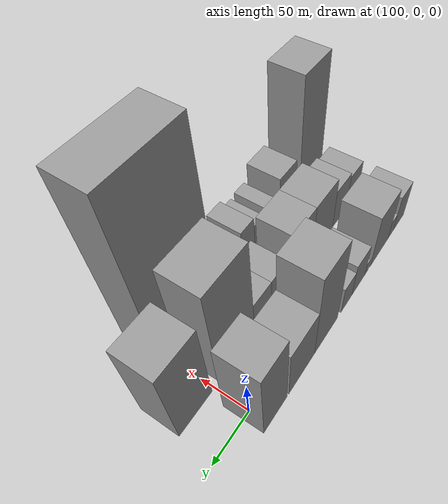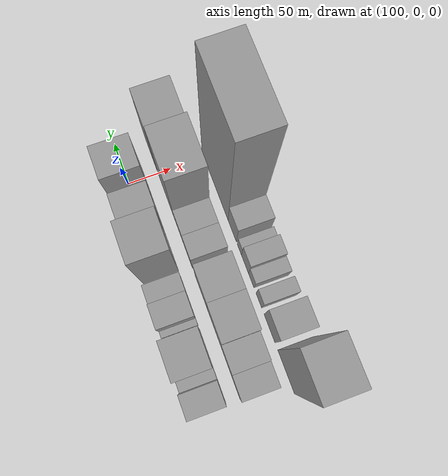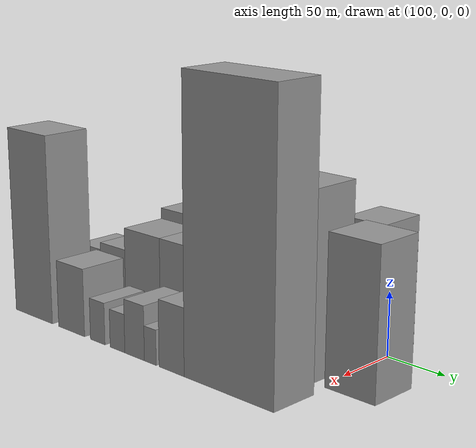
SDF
<sdf version="1.6">
 <world name="default">
  <model name="building_7">
   <static>1</static>
   <pose>100.0000 -246.0268 0 0.000000 0.000000 0.000000</pose>
   <link name="link">
    <pose>0 0 25.50 0 0 0</pose>
    <collision name="collision"><geometry><box><size>40.0000 25.8825 51.0000</size></box></geometry></collision>
    <visual name="visual">
     <cast_shadows>0</cast_shadows>
     <geometry><box><size>40.0000 25.8825 51.0000</size></box></geometry>
     <material>
      <script>
       <uri>model://grey_wall/materials/scripts</uri>
       <uri>model://grey_wall/materials/textures</uri>
       <name>vrc/grey_wall</name>
      </script>
     </material>
    </visual>
   </link>
  </model>
  <model name="building_8">
   <static>1</static>
   <pose>100.0000 -226.8082 0 0.000000 0.000000 0.000000</pose>
   <link name="link">
    <pose>0 0 13.50 0 0 0</pose>
    <collision name="collision"><geometry><box><size>40.0000 12.5546 27.0000</size></box></geometry></collision>
    <visual name="visual">
     <cast_shadows>0</cast_shadows>
     <geometry><box><size>40.0000 12.5546 27.0000</size></box></geometry>
     <material>
      <script>
       <uri>model://grey_wall/materials/scripts</uri>
       <uri>model://grey_wall/materials/textures</uri>
       <name>vrc/grey_wall</name>
      </script>
     </material>
    </visual>
   </link>
  </model>
  <model name="building_9">
   <static>1</static>
   <pose>100.0000 -200.1987 0 0.000000 0.000000 0.000000</pose>
   <link name="link">
    <pose>0 0 37.50 0 0 0</pose>
    <collision name="collision"><geometry><box><size>40.0000 40.6645 75.0000</size></box></geometry></collision>
    <visual name="visual">
     <cast_shadows>0</cast_shadows>
     <geometry><box><size>40.0000 40.6645 75.0000</size></box></geometry>
     <material>
      <script>
       <uri>model://grey_wall/materials/scripts</uri>
       <uri>model://grey_wall/materials/textures</uri>
       <name>vrc/grey_wall</name>
      </script>
     </material>
    </visual>
   </link>
  </model>
  <model name="building_10">
   <static>1</static>
   <pose>100.0000 -172.0679 0 0.000000 0.000000 0.000000</pose>
   <link name="link">
    <pose>0 0 9.00 0 0 0</pose>
    <collision name="collision"><geometry><box><size>40.0000 7.5971 18.0000</size></box></geometry></collision>
    <visual name="visual">
     <cast_shadows>0</cast_shadows>
     <geometry><box><size>40.0000 7.5971 18.0000</size></box></geometry>
     <material>
      <script>
       <uri>model://grey_wall/materials/scripts</uri>
       <uri>model://grey_wall/materials/textures</uri>
       <name>vrc/grey_wall</name>
      </script>
     </material>
    </visual>
   </link>
  </model>
  <model name="building_11">
   <static>1</static>
   <pose>100.0000 -154.8904 0 0.000000 0.000000 0.000000</pose>
   <link name="link">
    <pose>0 0 24.00 0 0 0</pose>
    <collision name="collision"><geometry><box><size>40.0000 26.7578 48.0000</size></box></geometry></collision>
    <visual name="visual">
     <cast_shadows>0</cast_shadows>
     <geometry><box><size>40.0000 26.7578 48.0000</size></box></geometry>
     <material>
      <script>
       <uri>model://grey_wall/materials/scripts</uri>
       <uri>model://grey_wall/materials/textures</uri>
       <name>vrc/grey_wall</name>
      </script>
     </material>
    </visual>
   </link>
  </model>
  <model name="building_12">
   <static>1</static>
   <pose>100.0000 -130.8595 0 0.000000 0.000000 0.000000</pose>
   <link name="link">
    <pose>0 0 19.50 0 0 0</pose>
    <collision name="collision"><geometry><box><size>40.0000 21.3041 39.0000</size></box></geometry></collision>
    <visual name="visual">
     <cast_shadows>0</cast_shadows>
     <geometry><box><size>40.0000 21.3041 39.0000</size></box></geometry>
     <material>
      <script>
       <uri>model://grey_wall/materials/scripts</uri>
       <uri>model://grey_wall/materials/textures</uri>
       <name>vrc/grey_wall</name>
      </script>
     </material>
    </visual>
   </link>
  </model>
  <model name="building_13">
   <static>1</static>
   <pose>100.0000 -92.4221 0 0.000000 0.000000 0.000000</pose>
   <link name="link">
    <pose>0 0 60.00 0 0 0</pose>
    <collision name="collision"><geometry><box><size>40.0000 41.5708 120.0000</size></box></geometry></collision>
    <visual name="visual">
     <cast_shadows>0</cast_shadows>
     <geometry><box><size>40.0000 41.5708 120.0000</size></box></geometry>
     <material>
      <script>
       <uri>model://grey_wall/materials/scripts</uri>
       <uri>model://grey_wall/materials/textures</uri>
       <name>vrc/grey_wall</name>
      </script>
     </material>
    </visual>
   </link>
  </model>
  <model name="building_14">
   <static>1</static>
   <pose>100.0000 -50.4554 0 0.000000 0.000000 0.000000</pose>
   <link name="link">
    <pose>0 0 36.00 0 0 0</pose>
    <collision name="collision"><geometry><box><size>40.0000 42.3625 72.0000</size></box></geometry></collision>
    <visual name="visual">
     <cast_shadows>0</cast_shadows>
     <geometry><box><size>40.0000 42.3625 72.0000</size></box></geometry>
     <material>
      <script>
       <uri>model://grey_wall/materials/scripts</uri>
       <uri>model://grey_wall/materials/textures</uri>
       <name>vrc/grey_wall</name>
      </script>
     </material>
    </visual>
   </link>
  </model>
  <model name="building_15">
   <static>1</static>
   <pose>100.0000 -8.9203 0 0.000000 0.000000 0.000000</pose>
   <link name="link">
    <pose>0 0 52.50 0 0 0</pose>
    <collision name="collision"><geometry><box><size>40.0000 34.7076 105.0000</size></box></geometry></collision>
    <visual name="visual">
     <cast_shadows>0</cast_shadows>
     <geometry><box><size>40.0000 34.7076 105.0000</size></box></geometry>
     <material>
      <script>
       <uri>model://grey_wall/materials/scripts</uri>
       <uri>model://grey_wall/materials/textures</uri>
       <name>vrc/grey_wall</name>
      </script>
     </material>
    </visual>
   </link>
  </model>
  <model name="building_41">
   <static>1</static>
   <pose>155.0000 -247.2422 0 0.000000 0.000000 0.000000</pose>
   <link name="link">
    <pose>0 0 24.00 0 0 0</pose>
    <collision name="collision"><geometry><box><size>40.0000 26.9508 48.0000</size></box></geometry></collision>
    <visual name="visual">
     <cast_shadows>0</cast_shadows>
     <geometry><box><size>40.0000 26.9508 48.0000</size></box></geometry>
     <material>
      <script>
       <uri>model://grey_wall/materials/scripts</uri>
       <uri>model://grey_wall/materials/textures</uri>
       <name>vrc/grey_wall</name>
      </script>
     </material>
    </visual>
   </link>
  </model>
  <model name="building_42">
   <static>1</static>
   <pose>155.0000 -218.7547 0 0.000000 0.000000 0.000000</pose>
   <link name="link">
    <pose>0 0 27.00 0 0 0</pose>
    <collision name="collision"><geometry><box><size>40.0000 30.0242 54.0000</size></box></geometry></collision>
    <visual name="visual">
     <cast_shadows>0</cast_shadows>
     <geometry><box><size>40.0000 30.0242 54.0000</size></box></geometry>
     <material>
      <script>
       <uri>model://grey_wall/materials/scripts</uri>
       <uri>model://grey_wall/materials/textures</uri>
       <name>vrc/grey_wall</name>
      </script>
     </material>
    </visual>
   </link>
  </model>
  <model name="building_43">
   <static>1</static>
   <pose>155.0000 -183.2637 0 0.000000 0.000000 0.000000</pose>
   <link name="link">
    <pose>0 0 36.00 0 0 0</pose>
    <collision name="collision"><geometry><box><size>40.0000 40.9579 72.0000</size></box></geometry></collision>
    <visual name="visual">
     <cast_shadows>0</cast_shadows>
     <geometry><box><size>40.0000 40.9579 72.0000</size></box></geometry>
     <material>
      <script>
       <uri>model://grey_wall/materials/scripts</uri>
       <uri>model://grey_wall/materials/textures</uri>
       <name>vrc/grey_wall</name>
      </script>
     </material>
    </visual>
   </link>
  </model>
  <model name="building_44">
   <static>1</static>
   <pose>155.0000 -143.3269 0 0.000000 0.000000 0.000000</pose>
   <link name="link">
    <pose>0 0 36.00 0 0 0</pose>
    <collision name="collision"><geometry><box><size>40.0000 38.9156 72.0000</size></box></geometry></collision>
    <visual name="visual">
     <cast_shadows>0</cast_shadows>
     <geometry><box><size>40.0000 38.9156 72.0000</size></box></geometry>
     <material>
      <script>
       <uri>model://grey_wall/materials/scripts</uri>
       <uri>model://grey_wall/materials/textures</uri>
       <name>vrc/grey_wall</name>
      </script>
     </material>
    </visual>
   </link>
  </model>
  <model name="building_45">
   <static>1</static>
   <pose>155.0000 -101.4629 0 0.000000 0.000000 0.000000</pose>
   <link name="link">
    <pose>0 0 24.00 0 0 0</pose>
    <collision name="collision"><geometry><box><size>40.0000 26.8125 48.0000</size></box></geometry></collision>
    <visual name="visual">
     <cast_shadows>0</cast_shadows>
     <geometry><box><size>40.0000 26.8125 48.0000</size></box></geometry>
     <material>
      <script>
       <uri>model://grey_wall/materials/scripts</uri>
       <uri>model://grey_wall/materials/textures</uri>
       <name>vrc/grey_wall</name>
      </script>
     </material>
    </visual>
   </link>
  </model>
  <model name="building_46">
   <static>1</static>
   <pose>155.0000 -74.0277 0 0.000000 0.000000 0.000000</pose>
   <link name="link">
    <pose>0 0 24.00 0 0 0</pose>
    <collision name="collision"><geometry><box><size>40.0000 28.0579 48.0000</size></box></geometry></collision>
    <visual name="visual">
     <cast_shadows>0</cast_shadows>
     <geometry><box><size>40.0000 28.0579 48.0000</size></box></geometry>
     <material>
      <script>
       <uri>model://grey_wall/materials/scripts</uri>
       <uri>model://grey_wall/materials/textures</uri>
       <name>vrc/grey_wall</name>
      </script>
     </material>
    </visual>
   </link>
  </model>
  <model name="building_47">
   <static>1</static>
   <pose>155.0000 -33.2867 0 0.000000 0.000000 0.000000</pose>
   <link name="link">
    <pose>0 0 69.00 0 0 0</pose>
    <collision name="collision"><geometry><box><size>40.0000 53.4242 138.0000</size></box></geometry></collision>
    <visual name="visual">
     <cast_shadows>0</cast_shadows>
     <geometry><box><size>40.0000 53.4242 138.0000</size></box></geometry>
     <material>
      <script>
       <uri>model://grey_wall/materials/scripts</uri>
       <uri>model://grey_wall/materials/textures</uri>
       <name>vrc/grey_wall</name>
      </script>
     </material>
    </visual>
   </link>
  </model>
  <model name="building_48">
   <static>1</static>
   <pose>155.0000 25.0939 0 0.000000 0.000000 0.000000</pose>
   <link name="link">
    <pose>0 0 55.50 0 0 0</pose>
    <collision name="collision"><geometry><box><size>40.0000 43.3369 111.0000</size></box></geometry></collision>
    <visual name="visual">
     <cast_shadows>0</cast_shadows>
     <geometry><box><size>40.0000 43.3369 111.0000</size></box></geometry>
     <material>
      <script>
       <uri>model://grey_wall/materials/scripts</uri>
       <uri>model://grey_wall/materials/textures</uri>
       <name>vrc/grey_wall</name>
      </script>
     </material>
    </visual>
   </link>
  </model>
  <model name="building_74">
   <static>1</static>
   <pose>210.0000 -251.9193 0 0.000000 0.000000 0.000000</pose>
   <link name="link">
    <pose>0 0 75.00 0 0 0</pose>
    <collision name="collision"><geometry><box><size>40.0000 47.6757 150.0000</size></box></geometry></collision>
    <visual name="visual">
     <cast_shadows>0</cast_shadows>
     <geometry><box><size>40.0000 47.6757 150.0000</size></box></geometry>
     <material>
      <script>
       <uri>model://grey_wall/materials/scripts</uri>
       <uri>model://grey_wall/materials/textures</uri>
       <name>vrc/grey_wall</name>
      </script>
     </material>
    </visual>
   </link>
  </model>
  <model name="building_75">
   <static>1</static>
   <pose>210.0000 -204.0917 0 0.000000 0.000000 0.000000</pose>
   <link name="link">
    <pose>0 0 27.00 0 0 0</pose>
    <collision name="collision"><geometry><box><size>40.0000 31.9795 54.0000</size></box></geometry></collision>
    <visual name="visual">
     <cast_shadows>0</cast_shadows>
     <geometry><box><size>40.0000 31.9795 54.0000</size></box></geometry>
     <material>
      <script>
       <uri>model://grey_wall/materials/scripts</uri>
       <uri>model://grey_wall/materials/textures</uri>
       <name>vrc/grey_wall</name>
      </script>
     </material>
    </visual>
   </link>
  </model>
  <model name="building_76">
   <static>1</static>
   <pose>210.0000 -172.5484 0 0.000000 0.000000 0.000000</pose>
   <link name="link">
    <pose>0 0 16.50 0 0 0</pose>
    <collision name="collision"><geometry><box><size>40.0000 17.1072 33.0000</size></box></geometry></collision>
    <visual name="visual">
     <cast_shadows>0</cast_shadows>
     <geometry><box><size>40.0000 17.1072 33.0000</size></box></geometry>
     <material>
      <script>
       <uri>model://grey_wall/materials/scripts</uri>
       <uri>model://grey_wall/materials/textures</uri>
       <name>vrc/grey_wall</name>
      </script>
     </material>
    </visual>
   </link>
  </model>
  <model name="building_77">
   <static>1</static>
   <pose>210.0000 -149.6534 0 0.000000 0.000000 0.000000</pose>
   <link name="link">
    <pose>0 0 15.00 0 0 0</pose>
    <collision name="collision"><geometry><box><size>40.0000 16.6828 30.0000</size></box></geometry></collision>
    <visual name="visual">
     <cast_shadows>0</cast_shadows>
     <geometry><box><size>40.0000 16.6828 30.0000</size></box></geometry>
     <material>
      <script>
       <uri>model://grey_wall/materials/scripts</uri>
       <uri>model://grey_wall/materials/textures</uri>
       <name>vrc/grey_wall</name>
      </script>
     </material>
    </visual>
   </link>
  </model>
  <model name="building_78">
   <static>1</static>
   <pose>210.0000 -130.5306 0 0.000000 0.000000 0.000000</pose>
   <link name="link">
    <pose>0 0 21.00 0 0 0</pose>
    <collision name="collision"><geometry><box><size>40.0000 21.5628 42.0000</size></box></geometry></collision>
    <visual name="visual">
     <cast_shadows>0</cast_shadows>
     <geometry><box><size>40.0000 21.5628 42.0000</size></box></geometry>
     <material>
      <script>
       <uri>model://grey_wall/materials/scripts</uri>
       <uri>model://grey_wall/materials/textures</uri>
       <name>vrc/grey_wall</name>
      </script>
     </material>
    </visual>
   </link>
  </model>
  <model name="building_79">
   <static>1</static>
   <pose>210.0000 -113.3895 0 0.000000 0.000000 0.000000</pose>
   <link name="link">
    <pose>0 0 13.50 0 0 0</pose>
    <collision name="collision"><geometry><box><size>40.0000 12.7194 27.0000</size></box></geometry></collision>
    <visual name="visual">
     <cast_shadows>0</cast_shadows>
     <geometry><box><size>40.0000 12.7194 27.0000</size></box></geometry>
     <material>
      <script>
       <uri>model://grey_wall/materials/scripts</uri>
       <uri>model://grey_wall/materials/textures</uri>
       <name>vrc/grey_wall</name>
      </script>
     </material>
    </visual>
   </link>
  </model>
  <model name="building_80">
   <static>1</static>
   <pose>210.0000 -91.0331 0 0.000000 0.000000 0.000000</pose>
   <link name="link">
    <pose>0 0 25.50 0 0 0</pose>
    <collision name="collision"><geometry><box><size>40.0000 25.9934 51.0000</size></box></geometry></collision>
    <visual name="visual">
     <cast_shadows>0</cast_shadows>
     <geometry><box><size>40.0000 25.9934 51.0000</size></box></geometry>
     <material>
      <script>
       <uri>model://grey_wall/materials/scripts</uri>
       <uri>model://grey_wall/materials/textures</uri>
       <name>vrc/grey_wall</name>
      </script>
     </material>
    </visual>
   </link>
  </model>
  <model name="building_81">
   <static>1</static>
   <pose>210.0000 -35.7269 0 0.000000 0.000000 0.000000</pose>
   <link name="link">
    <pose>0 0 108.00 0 0 0</pose>
    <collision name="collision"><geometry><box><size>40.0000 84.6189 216.0000</size></box></geometry></collision>
    <visual name="visual">
     <cast_shadows>0</cast_shadows>
     <geometry><box><size>40.0000 84.6189 216.0000</size></box></geometry>
     <material>
      <script>
       <uri>model://grey_wall/materials/scripts</uri>
       <uri>model://grey_wall/materials/textures</uri>
       <name>vrc/grey_wall</name>
      </script>
     </material>
    </visual>
   </link>
  </model>
 </world>
</sdf>
